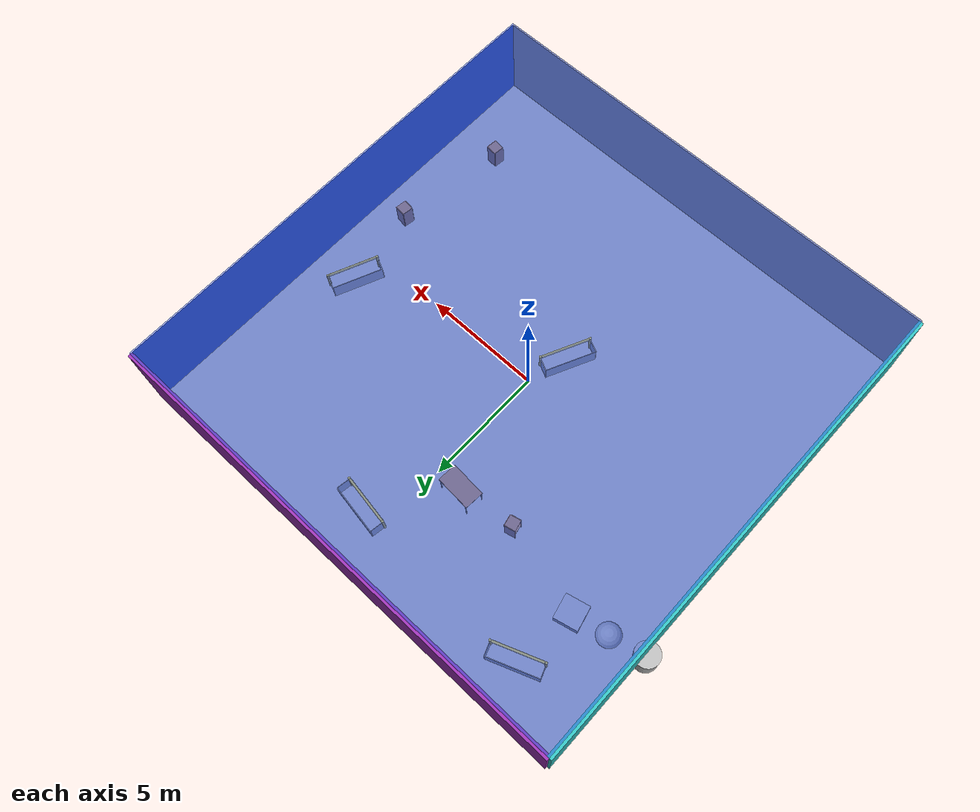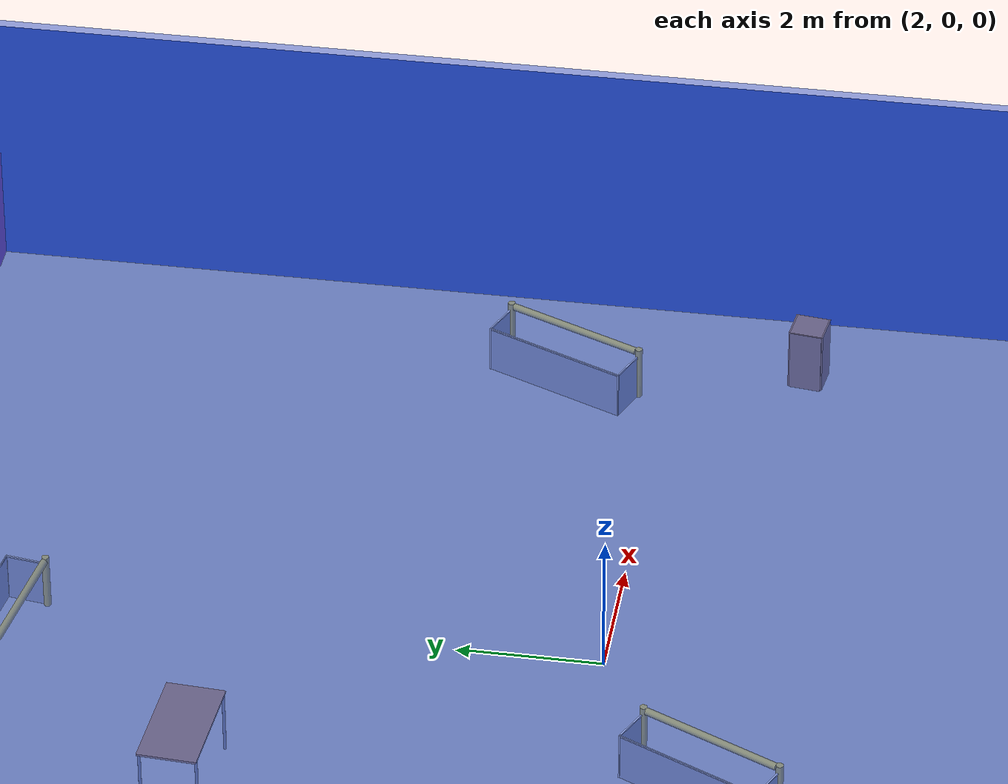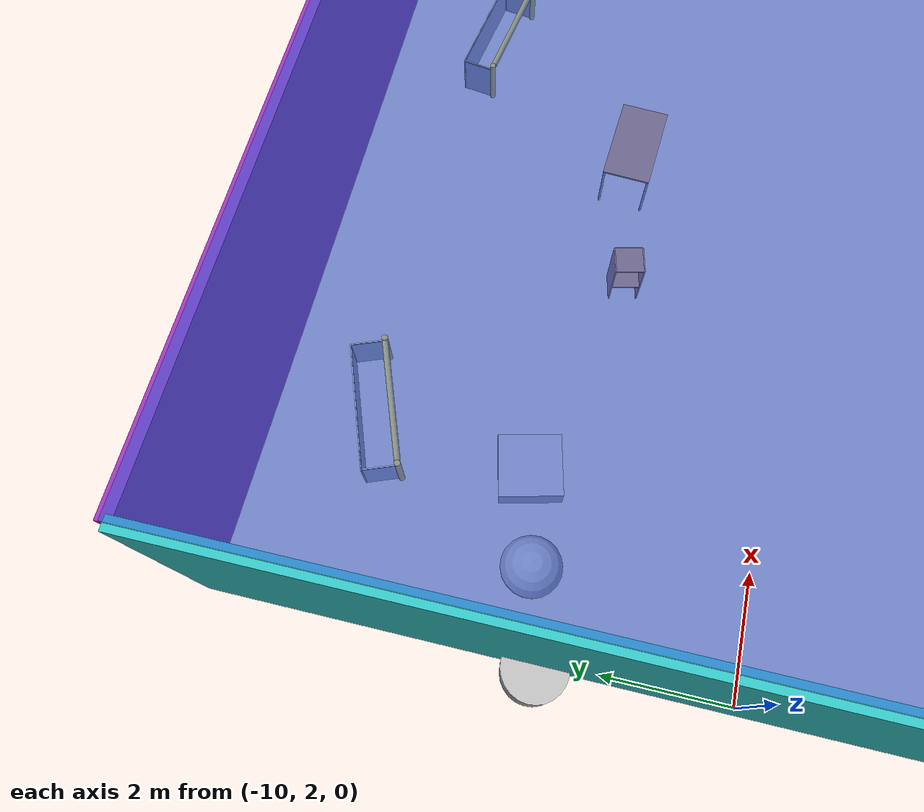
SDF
<sdf version="1.4">
 <world name="default">
  <physics type="ode">
   <max_step_size>0.001</max_step_size>
   <real_time_factor>1</real_time_factor>
   <real_time_update_rate>1000</real_time_update_rate>
   <gravity>0 0 -9.8</gravity>
  </physics>
  <scene><ambient>0.4 0.4 0.4 1</ambient><background>0.7 0.7 0.7 1</background><shadows>1</shadows></scene>
  <model name="Surrounding">
   <static>1</static>
   <link name="Ceiling">
    <collision name="Ceiling_Collision"><geometry><box><size>20 20 0.1</size></box></geometry></collision>
    <visual name="Ceiling_Visual">
     <geometry><box><size>20 20 0.1</size></box></geometry>
     <material>
      <script><uri>file://media/materials/scripts/gazebo.material</uri><name>Gazebo/BlueTransparent</name></script>
     </material>
    </visual>
    <pose>0 0 4.05 0 0 0</pose>
   </link>
   <link name="Wall_South">
    <collision name="Wall_South_Collision">
     <geometry><box><size>20 0 4</size></box></geometry>
     <pose>0 0 2 0 -0 0</pose>
    </collision>
    <visual name="Wall_South_Visual">
     <pose>0 0 2 0 -0 0</pose>
     <geometry><box><size>20 0 4</size></box></geometry>
     <material>
      <script><uri>file://media/materials/scripts/gazebo.material</uri><name>Gazebo/Pioneer2Body</name></script>
     </material>
    </visual>
    <velocity_decay><linear>0</linear><angular>0</angular></velocity_decay>
    <pose>0 -10 0 0 -0 0</pose>
   </link>
   <link name="Wall_East">
    <collision name="Wall_21_Collision">
     <geometry><box><size>20 0 4</size></box></geometry>
     <pose>0 0 2 0 -0 0</pose>
    </collision>
    <visual name="Wall_21_Visual">
     <pose>0 0 2 0 -0 0</pose>
     <geometry><box><size>20 0 4</size></box></geometry>
     <material>
      <script><uri>file://media/materials/scripts/gazebo.material</uri><name>Gazebo/Blue</name></script>
     </material>
    </visual>
    <velocity_decay><linear>0</linear><angular>0</angular></velocity_decay>
    <pose>10 0 0 0 -0 1.5708</pose>
   </link>
   <link name="Wall_North">
    <collision name="Wall_22_Collision">
     <geometry><box><size>20 0.2 4</size></box></geometry>
     <pose>0 0 2 0 -0 0</pose>
    </collision>
    <visual name="Wall_22_Visual">
     <pose>0 0 2 0 -0 0</pose>
     <geometry><box><size>20 0.2 4</size></box></geometry>
     <material>
      <script><uri>file://media/materials/scripts/gazebo.material</uri><name>Gazebo/PurpleGlow</name></script>
     </material>
    </visual>
    <velocity_decay><linear>0</linear><angular>0</angular></velocity_decay>
    <pose>0 10 0 0 -0 0</pose>
   </link>
   <link name="Wall_West">
    <collision name="Wall_23_Collision">
     <geometry><box><size>20 0.2 4</size></box></geometry>
     <pose>0 0 2 0 -0 0</pose>
    </collision>
    <visual name="Wall_23_Visual">
     <pose>0 0 2 0 -0 0</pose>
     <geometry><box><size>20 0.2 4</size></box></geometry>
     <material>
      <script><uri>file://media/materials/scripts/gazebo.material</uri><name>Gazebo/TurquoiseGlow</name></script>
     </material>
    </visual>
    <velocity_decay><linear>0</linear><angular>0</angular></velocity_decay>
    <pose>-10 0 0 0 0 -1.5708</pose>
   </link>
   <link name="Ground_link">
    <collision name="collision">
     <pose>0 0 .05 0 -0 0</pose>
     <geometry><box><size>20 20 0.1</size></box></geometry>
    </collision>
    <visual name="visual">
     <pose>0 0 .05 0 -0 0</pose>
     <geometry><box><size>20 20 0.1</size></box></geometry>
     <material>
      <script><uri>file://media/materials/scripts/gazebo.material</uri><name>Gazebo/JointAnchor</name></script>
     </material>
    </visual>
   </link>
   <static>1</static>
  </model>
  <spherical_coordinates>
   <surface_model>EARTH_WGS84</surface_model>
   <latitude_deg>0</latitude_deg>
   <longitude_deg>0</longitude_deg>
   <elevation>0</elevation>
   <heading_deg>0</heading_deg>
  </spherical_coordinates>
  <light name="lightball_0" type="diffuse">
   <diffuse>0.8 0.8 0.8 1</diffuse>
   <specular>0.2 0.2 0.2 1</specular>
   <attenuation>
    <range>100</range>
    <constant>0.7</constant>
    <linear>0.01</linear>
    <quadratic>0.001</quadratic>
   </attenuation>
   <direction>-0.5 0.1 -0.9</direction>
   <pose>8.35169316087 4.07680878833 2.22558769459 0 0 0</pose>
  </light>
  <include>
   <uri>model://textured_shapes</uri>
   <pose>-8.68271040414 5.28964643607 0 0 0 1.80201161615</pose>
  </include>
  <include>
   <uri>model://robocup_3Dsim_goal</uri>
   <pose>-6.78994258957 7.95740016509 0 0 0 1.93382507886</pose>
  </include>
  <include><uri>model://cabinet</uri><pose>-3.60049239418 4.76954392415 0 0 0 0.22257648841</pose></include>
  <include>
   <uri>model://robocup_3Dsim_goal</uri>
   <pose>-0.355668319571 -1.73334151141 0 0 0 2.69406165432</pose>
  </include>
  <include><uri>model://table</uri><pose>-1.25906112093 5.05173437516 0 0 0 3.07401715142</pose></include>
  <include>
   <uri>model://robocup_3Dsim_goal</uri>
   <pose>0.981293001724 7.72058712398 0 0 0 1.41670163591</pose>
  </include>
  <include><uri>model://cabinet</uri><pose>7.92768876894 -6.60717179051 0 0 0 1.47506022087</pose></include>
  <include><uri>model://cabinet</uri><pose>8.65956381045 -1.93819355736 0 0 0 3.01365656185</pose></include>
  <include>
   <uri>model://robocup_3Dsim_goal</uri>
   <pose>8.32690740197 1.33518239914 0 0 0 2.73353669995</pose>
  </include>
 </world>
</sdf>

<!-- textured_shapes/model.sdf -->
<sdf version="1.6">
  <model name="textured_shapes">
    <pose>0 0 0.5 0 0 0</pose>
    <link name="box">
      <pose>0 -1.5 0 0 0 0</pose>
      <collision name="collision">
        <geometry>
          <box>
            <size>1 1 1</size>
          </box>
        </geometry>
      </collision>
      <visual name="visual">
        <geometry>
          <box>
            <size>1 1 1</size>
          </box>
        </geometry>
        <material>
          <script>
            <uri>model://../model_source/models/textured_shapes/materials/scripts</uri>
            <uri>model://../model_source/models/textured_shapes/materials/textures</uri>
            <name>TexturedShape/Squares</name>
          </script>
        </material>
      </visual>
    </link>
    <link name="sphere">
      <collision name="collision">
        <geometry>
          <sphere>
            <radius>0.5</radius>
          </sphere>
        </geometry>
      </collision>
      <visual name="visual">
        <geometry>
          <sphere>
            <radius>0.5</radius>
          </sphere>
        </geometry>
        <material>
          <script>
            <uri>model://../model_source/models/textured_shapes/materials/scripts</uri>
            <uri>model://../model_source/models/textured_shapes/materials/textures</uri>
            <name>TexturedShape/Squares</name>
          </script>
        </material>
      </visual>
    </link>
    <link name="cylinder">
      <pose>0 1.5 0 0 0 0</pose>
      <collision name="collision">
        <geometry>
          <cylinder>
            <radius>0.5</radius>
            <length>1</length>
          </cylinder>
        </geometry>
      </collision>
      <visual name="visual">
        <geometry>
          <cylinder>
            <radius>0.5</radius>
            <length>1</length>
          </cylinder>
        </geometry>
        <material>
          <script>
            <uri>model://../model_source/models/textured_shapes/materials/scripts</uri>
            <uri>model://../model_source/models/textured_shapes/materials/textures</uri>
            <name>TexturedShape/Squares</name>
          </script>
        </material>
      </visual>
    </link>
  </model>
</sdf>

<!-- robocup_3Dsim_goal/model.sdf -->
<sdf version="1.5">
  <model name="robocup_3d_goal">
    <static>true</static>
    <link name="left_post">
      <pose>0 1.05 0.45 0 0 0</pose>
      <collision name="collision">
        <geometry>
          <cylinder>
            <radius>0.05</radius>
            <length>0.9</length>
          </cylinder>
        </geometry>
      </collision>
      <visual name="visual">
        <geometry>
          <cylinder>
            <radius>0.05</radius>
            <length>0.9</length>
          </cylinder>
        </geometry>
        <material>
          <script>
            <uri>file://media/materials/scripts/gazebo.material</uri>
            <name>Gazebo/ZincYellow</name>
          </script>
        </material>
      </visual>
    </link>
    <link name="left_support_horiz_lower">
      <pose>0.30 1.05 0.01 0 0 0</pose>
      <collision name="collision">
        <geometry>
          <box>
            <size>0.50 0.02 0.02</size>
          </box>
        </geometry>
      </collision>
      <visual name="visual">
        <geometry>
          <box>
            <size>0.50 0.02 0.02</size>
          </box>
        </geometry>
        <material>
          <script>
            <uri>file://media/materials/scripts/gazebo.material</uri>
            <name>Gazebo/White</name>
          </script>
        </material>
      </visual>
    </link>
    <link name="left_support_horiz_upper">
      <pose>0.30 1.05 0.79 0 0 0</pose>
      <collision name="collision">
        <geometry>
          <box>
            <size>0.50 0.02 0.02</size>
          </box>
        </geometry>
      </collision>
      <visual name="visual">
        <geometry>
          <box>
            <size>0.50 0.02 0.02</size>
          </box>
        </geometry>
        <material>
          <script>
            <uri>file://media/materials/scripts/gazebo.material</uri>
            <name>Gazebo/White</name>
          </script>
        </material>
      </visual>
    </link>
    <link name="left_support_vertical">
      <pose>0.56 1.05 0.4 0 1.5708 0</pose>
      <collision name="collision">
        <geometry>
          <box>
            <size>0.80 0.02 0.02</size>
          </box>
        </geometry>
      </collision>
      <visual name="visual">
        <geometry>
          <box>
            <size>0.80 0.02 0.02</size>
          </box>
        </geometry>
        <material>
          <script>
            <uri>file://media/materials/scripts/gazebo.material</uri>
            <name>Gazebo/White</name>
          </script>
        </material>
      </visual>
    </link>
    <link name="right_support_horiz_lower">
      <pose>0.30 -1.05 0.01 0 0 0</pose>
      <collision name="collision">
        <geometry>
          <box>
            <size>0.50 0.02 0.02</size>
          </box>
        </geometry>
      </collision>
      <visual name="visual">
        <geometry>
          <box>
            <size>0.50 0.02 0.02</size>
          </box>
        </geometry>
        <material>
          <script>
            <uri>file://media/materials/scripts/gazebo.material</uri>
            <name>Gazebo/White</name>
          </script>
        </material>
      </visual>
    </link>
    <link name="right_support_horiz_upper">
      <pose>0.30 -1.05 0.79 0 0 0</pose>
      <collision name="collision">
        <geometry>
          <box>
            <size>0.50 0.02 0.02</size>
          </box>
        </geometry>
      </collision>
      <visual name="visual">
        <geometry>
          <box>
            <size>0.50 0.02 0.02</size>
          </box>
        </geometry>
        <material>
          <script>
            <uri>file://media/materials/scripts/gazebo.material</uri>
            <name>Gazebo/White</name>
          </script>
        </material>
      </visual>
    </link>
    <link name="right_support_vertical">
      <pose>0.56 -1.05 0.4 0 1.5708 0</pose>
      <collision name="collision">
        <geometry>
          <box>
            <size>0.80 0.02 0.02</size>
          </box>
        </geometry>
      </collision>
      <visual name="visual">
        <geometry>
          <box>
            <size>0.80 0.02 0.02</size>
          </box>
        </geometry>
        <material>
          <script>
            <uri>file://media/materials/scripts/gazebo.material</uri>
            <name>Gazebo/White</name>
          </script>
        </material>
      </visual>
    </link>
    <link name="center_support_horiz_lower">
      <pose>0.56 0 0.01 0 1.5708 0</pose>
      <collision name="collision">
        <geometry>
          <box>
            <size>0.02 2.08 0.02</size>
          </box>
        </geometry>
      </collision>
      <visual name="visual">
        <geometry>
          <box>
            <size>0.02 2.08 0.02</size>
          </box>
        </geometry>
        <material>
          <script>
            <uri>file://media/materials/scripts/gazebo.material</uri>
            <name>Gazebo/White</name>
          </script>
        </material>
      </visual>
    </link>
    <link name="center_support_horiz_upper">
      <pose>0.56 0 0.79 0 1.5708 0</pose>
      <collision name="collision">
        <geometry>
          <box>
            <size>0.02 2.08 0.02</size>
          </box>
        </geometry>
      </collision>
      <visual name="visual">
        <geometry>
          <box>
            <size>0.02 2.08 0.02</size>
          </box>
        </geometry>
        <material>
          <script>
            <uri>file://media/materials/scripts/gazebo.material</uri>
            <name>Gazebo/White</name>
          </script>
        </material>
      </visual>
    </link>
    <link name="right_post">
      <pose>0 -1.05 0.45 0 0 0</pose>
      <collision name="collision">
        <geometry>
          <cylinder>
            <radius>0.05</radius>
            <length>0.9</length>
          </cylinder>
        </geometry>
      </collision>
      <visual name="visual">
        <geometry>
          <cylinder>
            <radius>0.05</radius>
            <length>0.9</length>
          </cylinder>
        </geometry>
        <material>
          <script>
            <uri>file://media/materials/scripts/gazebo.material</uri>
            <name>Gazebo/ZincYellow</name>
          </script>
        </material>
      </visual>
    </link>
    <link name="crossbar">
      <pose>0 0 0.85 1.57 1.57 0</pose>
      <collision name="collision">
        <geometry>
          <cylinder>
            <radius>0.05</radius>
            <length>2.0</length>
          </cylinder>
        </geometry>
      </collision>
      <visual name="visual">
        <geometry>
          <cylinder>
            <radius>0.05</radius>
            <length>2.0</length>
          </cylinder>
        </geometry>
        <material>
          <script>
            <uri>file://media/materials/scripts/gazebo.material</uri>
            <name>Gazebo/ZincYellow</name>
          </script>
        </material>
      </visual>
    </link>
    <link name="center_net">
      <pose>0.56 0 0.40 0 0 0</pose>
      <collision name="collision">
        <geometry>
          <box>
            <size>0.01 2.1 0.80</size>
          </box>
        </geometry>
      </collision>
      <visual name="visual">
        <geometry>
          <box>
            <size>0.01 2.1 0.80</size>
          </box>
        </geometry>
        <material>
          <script>
            <uri>model://../model_source/models/robocup09_spl_field/materials/scripts/</uri>
            <uri>model://../model_source/models/robocup09_spl_field/materials/textures/</uri>
            <name>RoboCup/Net</name>
          </script>
        </material>
      </visual>
    </link>
    <link name="left_net">
      <pose>0.30 1.05 0.40 0 0 0</pose>
      <collision name="collision">
        <geometry>
          <box>
            <size>0.50 0.01 0.76</size>
          </box>
        </geometry>
      </collision>
      <visual name="visual">
        <geometry>
          <box>
            <size>0.50 0.01 0.76</size>
          </box>
        </geometry>
        <material>
          <script>
            <uri>model://../model_source/models/robocup09_spl_field/materials/scripts/</uri>
            <uri>model://../model_source/models/robocup09_spl_field/materials/textures/</uri>
            <name>RoboCup/Net</name>
          </script>
        </material>
      </visual>
    </link>
    <link name="right_net">
      <pose>0.30 -1.05 0.40 0 0 0</pose>
      <collision name="collision">
        <geometry>
          <box>
            <size>0.50 0.01 0.76</size>
          </box>
        </geometry>
      </collision>
      <visual name="visual">
        <geometry>
          <box>
            <size>0.50 0.01 0.76</size>
          </box>
        </geometry>
        <material>
          <script>
            <uri>model://../model_source/models/robocup09_spl_field/materials/scripts/</uri>
            <uri>model://../model_source/models/robocup09_spl_field/materials/textures/</uri>
            <name>RoboCup/Net</name>
          </script>
        </material>
      </visual>
    </link>
  </model>
</sdf>

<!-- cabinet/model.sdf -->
<sdf version="1.5">
  <model name="cabinet">
    <static>true</static>
    <link name="cabinet_bottom_plate">
      <inertial>
        <pose>0 0 -1 0 0 0</pose>
        <inertia>
          <ixx>2.050000</ixx>
          <ixy>0</ixy>
          <ixz>0</ixz>
          <iyy>2.050000</iyy>
          <iyz>0</iyz>
          <izz>2.050000</izz>
        </inertia>
        <mass>25.000000</mass>
      </inertial>
      <collision name="cabinet_bottom_plate_geom">
        <pose>0 0 0.010000 0 0 0</pose>
        <geometry>
          <box>
            <size>0.450000 0.450000 0.020000</size>
          </box>
        </geometry>
      </collision>
      <visual name="cabinet_bottom_plate_geom_visual">
        <pose>0 0 0.010000 0 0 0</pose>
        <geometry>
          <box>
            <size>0.450000 0.450000 0.020000</size>
          </box>
        </geometry>
        <material>
          <script>
            <uri>model://media/materials/scripts/gazebo.material</uri>
            <name>Gazebo/Wood</name>
          </script>
        </material>
      </visual>
      <collision name="cabinet_bottom_plate_geom_cabinet_back_plate">
        <pose>0.235000 0 0.510000 0 0 0</pose>
        <geometry>
          <box>
            <size>0.020000 0.450000 1.020000</size>
          </box>
        </geometry>
      </collision>
      <visual name="cabinet_bottom_plate_geom_cabinet_back_plate_visual">
        <pose>0.235000 0 0.510000 0 0 0</pose>
        <geometry>
          <box>
            <size>0.020000 0.450000 1.020000</size>
          </box>
        </geometry>
        <material>
          <script>
            <uri>model://media/materials/scripts/gazebo.material</uri>
            <name>Gazebo/Wood</name>
          </script>
        </material>
      </visual>
      <collision name="cabinet_bottom_plate_geom_cabinet_left_plate">
        <pose>0 0.235000 0.510000 0 0 0</pose>
        <geometry>
          <box>
            <size>0.450000 0.020000 1.020000</size>
          </box>
        </geometry>
      </collision>
      <visual name="cabinet_bottom_plate_geom_cabinet_left_plate_visual">
        <pose>0 0.235000 0.510000 0 0 0</pose>
        <geometry>
          <box>
            <size>0.450000 0.020000 1.020000</size>
          </box>
        </geometry>
        <material>
          <script>
            <uri>model://media/materials/scripts/gazebo.material</uri>
            <name>Gazebo/Wood</name>
          </script>
        </material>
      </visual>
      <collision name="cabinet_bottom_plate_geom_cabinet_middle_plate">
        <pose>0 0 0.510000 0 0 0</pose>
        <geometry>
          <box>
            <size>0.450000 0.450000 0.020000</size>
          </box>
        </geometry>
      </collision>
      <visual name="cabinet_bottom_plate_geom_cabinet_middle_plate_visual">
        <pose>0 0 0.510000 0 0 0</pose>
        <geometry>
          <box>
            <size>0.450000 0.450000 0.020000</size>
          </box>
        </geometry>
        <material>
          <script>
            <uri>model://media/materials/scripts/gazebo.material</uri>
            <name>Gazebo/Wood</name>
          </script>
        </material>
      </visual>
      <collision name="cabinet_bottom_plate_geom_cabinet_right_plate">
        <pose>0 -0.235000 0.510000 0 0 0</pose>
        <geometry>
          <box>
            <size>0.450000 0.020000 1.020000</size>
          </box>
        </geometry>
      </collision>
      <visual name="cabinet_bottom_plate_geom_cabinet_right_plate_visual">
        <pose>0 -0.235000 0.510000 0 0 0</pose>
        <geometry>
          <box>
            <size>0.450000 0.020000 1.020000</size>
          </box>
        </geometry>
        <material>
          <script>
            <uri>model://media/materials/scripts/gazebo.material</uri>
            <name>Gazebo/Wood</name>
          </script>
        </material>
      </visual>
      <collision name="cabinet_bottom_plate_geom_cabinet_top_plate">
        <pose>0 0 1.010000 0 0 0</pose>
        <geometry>
          <box>
            <size>0.450000 0.450000 0.020000</size>
          </box>
        </geometry>
      </collision>
      <visual name="cabinet_bottom_plate_geom_cabinet_top_plate_visual">
        <pose>0 0 1.010000 0 0 0</pose>
        <geometry>
          <box>
            <size>0.450000 0.450000 0.020000</size>
          </box>
        </geometry>
        <material>
          <script>
            <uri>model://media/materials/scripts/gazebo.material</uri>
            <name>Gazebo/Wood</name>
          </script>
        </material>
      </visual>
    </link>
  </model>
</sdf>

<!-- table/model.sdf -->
<sdf version="1.5">
  <model name="table">
    <static>true</static>
    <link name="link">
      <collision name="surface">
        <pose>0 0 1.0 0 0 0</pose>
        <geometry>
          <box>
            <size>1.5 0.8 0.03</size>
          </box>
        </geometry>
        <surface>
          <friction>
            <ode>
              <mu>0.6</mu>
              <mu2>0.6</mu2>
            </ode>
          </friction>
        </surface>
      </collision>
      <visual name="visual1">
        <pose>0 0 1.0 0 0 0</pose>
        <geometry>
          <box>
            <size>1.5 0.8 0.03</size>
          </box>
        </geometry>
        <material>
          <script>
            <uri>model://media/materials/scripts/gazebo.material</uri>
            <name>Gazebo/Wood</name>
          </script>
        </material>
      </visual>
      <collision name="front_left_leg">
        <pose>0.68 0.38 0.5 0 0 0</pose>
        <geometry>
          <cylinder>
            <radius>0.02</radius>
            <length>1.0</length>
          </cylinder>
        </geometry>
      </collision>
      <visual name="front_left_leg">
        <pose>0.68 0.38 0.5 0 0 0</pose>
        <geometry>
          <cylinder>
            <radius>0.02</radius>
            <length>1.0</length>
          </cylinder>
        </geometry>
        <material>
          <script>
            <uri>model://media/materials/scripts/gazebo.material</uri>
            <name>Gazebo/Grey</name>
          </script>
        </material>
      </visual>
      <collision name="front_right_leg">
        <pose>0.68 -0.38 0.5 0 0 0</pose>
        <geometry>
          <cylinder>
            <radius>0.02</radius>
            <length>1.0</length>
          </cylinder>
        </geometry>
      </collision>
      <visual name="front_right_leg">
        <pose>0.68 -0.38 0.5 0 0 0</pose>
        <geometry>
          <cylinder>
            <radius>0.02</radius>
            <length>1.0</length>
          </cylinder>
        </geometry>
        <material>
          <script>
            <uri>model://media/materials/scripts/gazebo.material</uri>
            <name>Gazebo/Grey</name>
          </script>
        </material>
      </visual>
      <collision name="back_right_leg">
        <pose>-0.68 -0.38 0.5 0 0 0</pose>
        <geometry>
          <cylinder>
            <radius>0.02</radius>
            <length>1.0</length>
          </cylinder>
        </geometry>
      </collision>
      <visual name="back_right_leg">
        <pose>-0.68 -0.38 0.5 0 0 0</pose>
        <geometry>
          <cylinder>
            <radius>0.02</radius>
            <length>1.0</length>
          </cylinder>
        </geometry>
        <material>
          <script>
            <uri>model://media/materials/scripts/gazebo.material</uri>
            <name>Gazebo/Grey</name>
          </script>
        </material>
      </visual>
      <collision name="back_left_leg">
        <pose>-0.68 0.38 0.5 0 0 0</pose>
        <geometry>
          <cylinder>
            <radius>0.02</radius>
            <length>1.0</length>
          </cylinder>
        </geometry>
      </collision>
      <visual name="back_left_leg">
        <pose>-0.68 0.38 0.5 0 0 0</pose>
        <geometry>
          <cylinder>
            <radius>0.02</radius>
            <length>1.0</length>
          </cylinder>
        </geometry>
        <material>
          <script>
            <uri>model://media/materials/scripts/gazebo.material</uri>
            <name>Gazebo/Grey</name>
          </script>
        </material>
      </visual>
    </link>
  </model>
</sdf>
